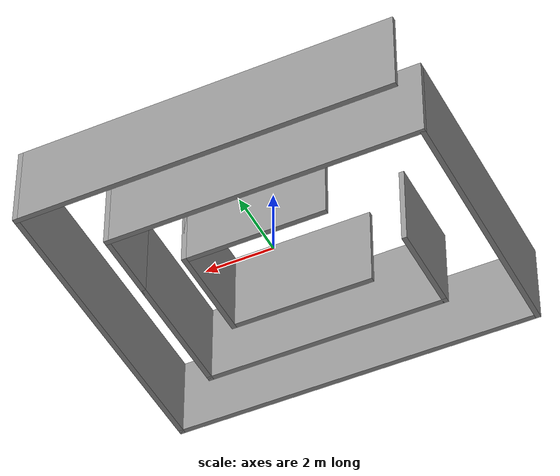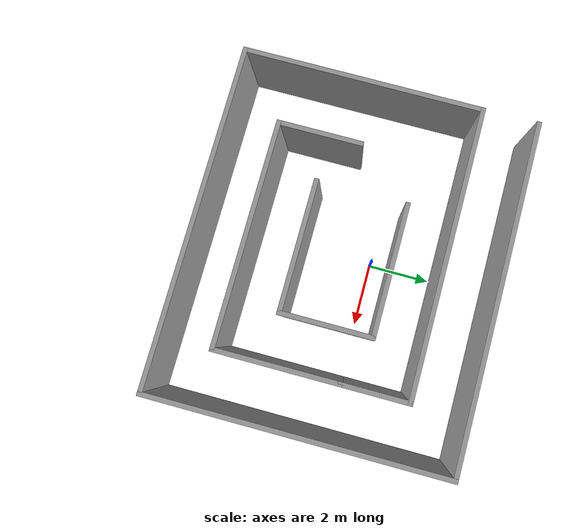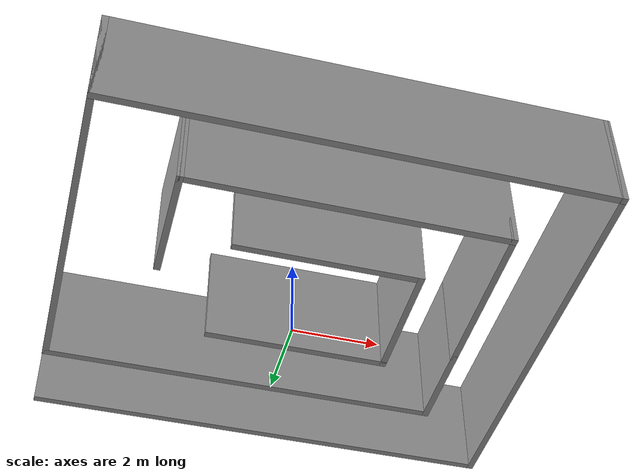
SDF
<?xml version='1.0'?>
<sdf version='1.6'>
  <model name='mymap2'>
    <pose frame=''>0.165 -0.808 0 0 -0 0</pose>
    <link name='Wall_1'>
      <collision name='Wall_1_Collision'>
        <geometry>
          <box>
            <size>2.75 0.15 2.5</size>
          </box>
        </geometry>
        <pose frame=''>0 0 1.25 0 -0 0</pose>
      </collision>
      <visual name='Wall_1_Visual'>
        <pose frame=''>0 0 1.25 0 -0 0</pose>
        <geometry>
          <box>
            <size>2.75 0.15 2.5</size>
          </box>
        </geometry>
        <material>
          <script>
            <uri>file://media/materials/scripts/gazebo.material</uri>
            <name>Gazebo/Grey</name>
          </script>
          <ambient>1 1 1 1</ambient>
        </material>
      </visual>
      <pose frame=''>-3.425 -1.725 0 0 0 -1.5708</pose>
    </link>
    <link name='Wall_10'>
      <collision name='Wall_10_Collision'>
        <geometry>
          <box>
            <size>9.5 0.15 2.5</size>
          </box>
        </geometry>
        <pose frame=''>0 0 1.25 0 -0 0</pose>
      </collision>
      <visual name='Wall_10_Visual'>
        <pose frame=''>0 0 1.25 0 -0 0</pose>
        <geometry>
          <box>
            <size>9.5 0.15 2.5</size>
          </box>
        </geometry>
        <material>
          <script>
            <uri>file://media/materials/scripts/gazebo.material</uri>
            <name>Gazebo/Grey</name>
          </script>
          <ambient>1 1 1 1</ambient>
        </material>
      </visual>
      <pose frame=''>5.425 0 0 0 -0 1.5708</pose>
    </link>
    <link name='Wall_11'>
      <collision name='Wall_11_Collision'>
        <geometry>
          <box>
            <size>11 0.15 2.5</size>
          </box>
        </geometry>
        <pose frame=''>0 0 1.25 0 -0 0</pose>
      </collision>
      <visual name='Wall_11_Visual'>
        <pose frame=''>0 0 1.25 0 -0 0</pose>
        <geometry>
          <box>
            <size>11 0.15 2.5</size>
          </box>
        </geometry>
        <material>
          <script>
            <uri>file://media/materials/scripts/gazebo.material</uri>
            <name>Gazebo/Grey</name>
          </script>
          <ambient>1 1 1 1</ambient>
        </material>
      </visual>
      <pose frame=''>0 4.675 0 0 -0 3.14159</pose>
    </link>
    <link name='Wall_13'>
      <collision name='Wall_13_Collision'>
        <geometry>
          <box>
            <size>4.25 0.15 2.5</size>
          </box>
        </geometry>
        <pose frame=''>0 0 1.25 0 -0 0</pose>
      </collision>
      <visual name='Wall_13_Visual'>
        <pose frame=''>0 0 1.25 0 -0 0</pose>
        <geometry>
          <box>
            <size>4.25 0.15 2.5</size>
          </box>
        </geometry>
        <material>
          <script>
            <uri>file://media/materials/scripts/gazebo.material</uri>
            <name>Gazebo/Grey</name>
          </script>
          <ambient>1 1 1 1</ambient>
        </material>
      </visual>
      <pose frame=''>0.10083 1.41864 0 0 -0 0</pose>
    </link>
    <link name='Wall_14'>
      <collision name='Wall_14_Collision'>
        <geometry>
          <box>
            <size>3 0.15 2.5</size>
          </box>
        </geometry>
        <pose frame=''>0 0 1.25 0 -0 0</pose>
      </collision>
      <visual name='Wall_14_Visual'>
        <pose frame=''>0 0 1.25 0 -0 0</pose>
        <geometry>
          <box>
            <size>3 0.15 2.5</size>
          </box>
        </geometry>
        <material>
          <script>
            <uri>file://media/materials/scripts/gazebo.material</uri>
            <name>Gazebo/Grey</name>
          </script>
          <ambient>1 1 1 1</ambient>
        </material>
      </visual>
      <pose frame=''>2.15083 -0.00636 0 0 0 -1.5708</pose>
    </link>
    <link name='Wall_15'>
      <collision name='Wall_15_Collision'>
        <geometry>
          <box>
            <size>4.25 0.15 2.5</size>
          </box>
        </geometry>
        <pose frame=''>0 0 1.25 0 -0 0</pose>
      </collision>
      <visual name='Wall_15_Visual'>
        <pose frame=''>0 0 1.25 0 -0 0</pose>
        <geometry>
          <box>
            <size>4.25 0.15 2.5</size>
          </box>
        </geometry>
        <material>
          <script>
            <uri>file://media/materials/scripts/gazebo.material</uri>
            <name>Gazebo/Grey</name>
          </script>
          <ambient>1 1 1 1</ambient>
        </material>
      </visual>
      <pose frame=''>0.10083 -1.43136 0 0 -0 3.14159</pose>
    </link>
    <link name='Wall_2'>
      <collision name='Wall_2_Collision'>
        <geometry>
          <box>
            <size>7.25 0.15 2.5</size>
          </box>
        </geometry>
        <pose frame=''>0 0 1.25 0 -0 0</pose>
      </collision>
      <visual name='Wall_2_Visual'>
        <pose frame=''>0 0 1.25 0 -0 0</pose>
        <geometry>
          <box>
            <size>7.25 0.15 2.5</size>
          </box>
        </geometry>
        <material>
          <script>
            <uri>file://media/materials/scripts/gazebo.material</uri>
            <name>Gazebo/Grey</name>
          </script>
          <ambient>1 1 1 1</ambient>
        </material>
      </visual>
      <pose frame=''>0.125 -3.025 0 0 -0 0</pose>
    </link>
    <link name='Wall_3'>
      <collision name='Wall_3_Collision'>
        <geometry>
          <box>
            <size>4 0.15 2.5</size>
          </box>
        </geometry>
        <pose frame=''>0 0 1.25 0 -0 0</pose>
      </collision>
      <visual name='Wall_3_Visual'>
        <pose frame=''>0 0 1.25 0 -0 0</pose>
        <geometry>
          <box>
            <size>4 0.15 2.5</size>
          </box>
        </geometry>
        <material>
          <script>
            <uri>file://media/materials/scripts/gazebo.material</uri>
            <name>Gazebo/Grey</name>
          </script>
          <ambient>1 1 1 1</ambient>
        </material>
      </visual>
      <pose frame=''>3.675 -1.1 0 0 -0 1.5708</pose>
    </link>
    <link name='Wall_5'>
      <collision name='Wall_5_Collision'>
        <geometry>
          <box>
            <size>2.25 0.15 2.5</size>
          </box>
        </geometry>
        <pose frame=''>0 0 1.25 0 -0 0</pose>
      </collision>
      <visual name='Wall_5_Visual'>
        <pose frame=''>0 0 1.25 0 -0 0</pose>
        <geometry>
          <box>
            <size>2.25 0.15 2.5</size>
          </box>
        </geometry>
        <material>
          <script>
            <uri>file://media/materials/scripts/gazebo.material</uri>
            <name>Gazebo/Grey</name>
          </script>
          <ambient>1 1 1 1</ambient>
        </material>
      </visual>
      <pose frame=''>3.675 1.875 0 0 -0 1.5708</pose>
    </link>
    <link name='Wall_6'>
      <collision name='Wall_6_Collision'>
        <geometry>
          <box>
            <size>9.25 0.15 2.5</size>
          </box>
        </geometry>
        <pose frame=''>0 0 1.25 0 -0 0</pose>
      </collision>
      <visual name='Wall_6_Visual'>
        <pose frame=''>0 0 1.25 0 -0 0</pose>
        <geometry>
          <box>
            <size>9.25 0.15 2.5</size>
          </box>
        </geometry>
        <material>
          <script>
            <uri>file://media/materials/scripts/gazebo.material</uri>
            <name>Gazebo/Grey</name>
          </script>
          <ambient>1 1 1 1</ambient>
        </material>
      </visual>
      <pose frame=''>-0.875 2.925 0 0 -0 3.14159</pose>
    </link>
    <link name='Wall_7'>
      <collision name='Wall_7_Collision'>
        <geometry>
          <box>
            <size>7.75 0.15 2.5</size>
          </box>
        </geometry>
        <pose frame=''>0 0 1.25 0 -0 0</pose>
      </collision>
      <visual name='Wall_7_Visual'>
        <pose frame=''>0 0 1.25 0 -0 0</pose>
        <geometry>
          <box>
            <size>7.75 0.15 2.5</size>
          </box>
        </geometry>
        <material>
          <script>
            <uri>file://media/materials/scripts/gazebo.material</uri>
            <name>Gazebo/Grey</name>
          </script>
          <ambient>1 1 1 1</ambient>
        </material>
      </visual>
      <pose frame=''>-5.425 -0.875 0 0 0 -1.5708</pose>
    </link>
    <link name='Wall_8'>
      <collision name='Wall_8_Collision'>
        <geometry>
          <box>
            <size>11 0.15 2.5</size>
          </box>
        </geometry>
        <pose frame=''>0 0 1.25 0 -0 0</pose>
      </collision>
      <visual name='Wall_8_Visual'>
        <pose frame=''>0 0 1.25 0 -0 0</pose>
        <geometry>
          <box>
            <size>11 0.15 2.5</size>
          </box>
        </geometry>
        <material>
          <script>
            <uri>file://media/materials/scripts/gazebo.material</uri>
            <name>Gazebo/Grey</name>
          </script>
          <ambient>1 1 1 1</ambient>
        </material>
      </visual>
      <pose frame=''>0 -4.675 0 0 -0 0</pose>
    </link>
    <static>1</static>
  </model>
</sdf>
